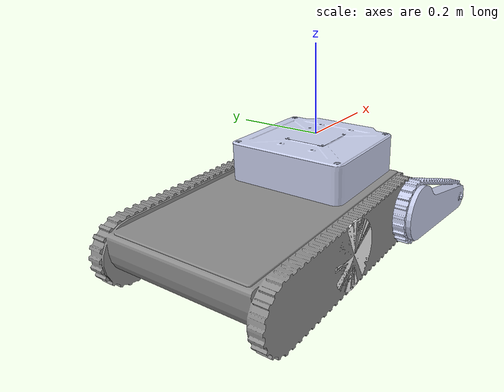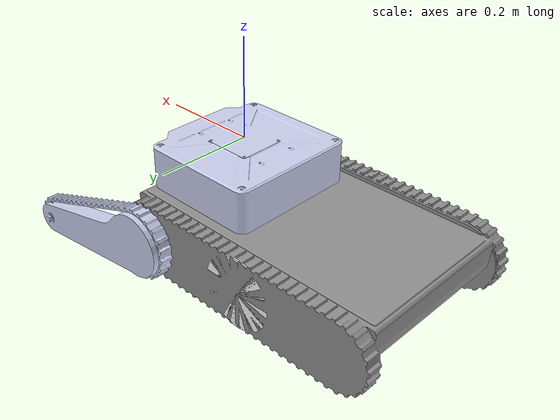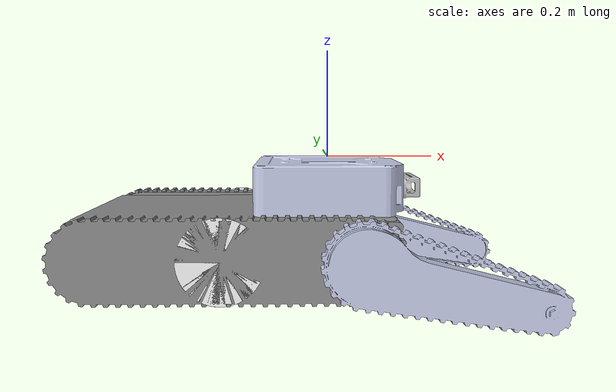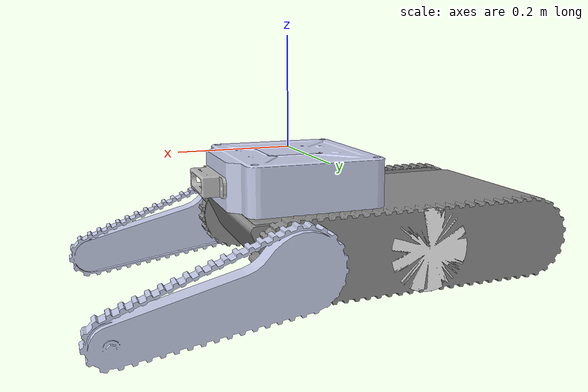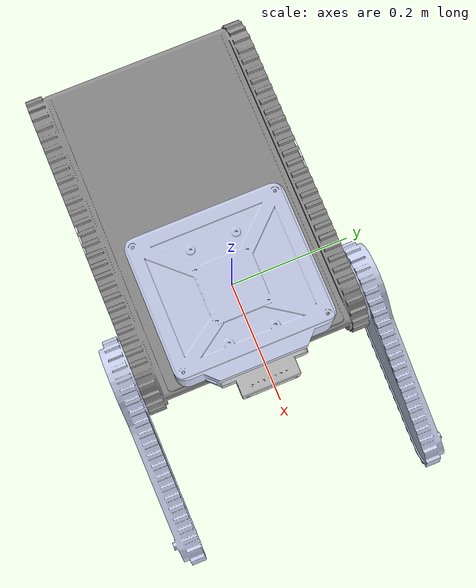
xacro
<?xml version="1.0"?>
<robot xmlns:xacro="http://www.ros.org/wiki/xacro" name="tracked_robot">

  <!-- Materials -->
  <material name="grey">
    <color rgba="0.56471 0.56471 0.56471 1"/>
  </material>

  <material name="white">
    <color rgba="1 1 1 0"/>
  </material>

  <material name="light_blue">
    <color rgba="0.79216 0.81961 0.93333 1"/>
  </material>

  <link name="lidar_link"/>

  <!-- Base Link -->
  <link name="base_link">
    <inertial>
      <origin xyz="-0.0023851 -2.6804E-12 0.049804" rpy="0 0 0"/>
      <mass value="24.218"/>
      <inertia ixx="0.38879" ixy="-2.3825E-10" ixz="-0.0015299" iyy="0.63474" iyz="-6.2968E-13" izz="0.97264"/>
    </inertial>

    <visual>
      <origin xyz="0 0 0" rpy="0 0 0"/>
      <geometry>
        <mesh filename="file://$(find t21_sim)/meshes/base_link.STL"/>
      </geometry>
      <material name="grey"/>
    </visual>

    <collision>
      <origin xyz="0 0 0" rpy="0 0 0"/>
      <geometry>
        <mesh filename="file://$(find t21_sim)/meshes/base_link.STL"/>
      </geometry>
    </collision>
  </link>

  <joint name="lidar_joint" type="fixed">
    <parent link="lidar_link"/><child link="base_link"/>
    <origin xyz="-0.1686 0.0 -0.199" rpy="0 0 0"/>
  </joint>

  <!-- Left Wheel -->
  <link name="wheel_left_link">
    <inertial>
      <origin xyz="0 -0.015 0" rpy="0 0 0"/>
      <mass value="0.50915"/>
      <inertia ixx="0.00072583" ixy="3.5474E-36" ixz="-1.9259E-34" iyy="0.0013753" iyz="-2.0195E-21" izz="0.00072583"/>
    </inertial>

    <visual>
      <origin xyz="0 0 0" rpy="0 0 0"/>
      <geometry>
        <mesh filename="file://$(find t21_sim)/meshes/left_wheel_link.STL" scale="1.0 0.1 1.0"/>
      </geometry>
      <material name="white"/>
    </visual>

    <collision>
      <origin xyz="0 0 0" rpy="0 0 0"/>
      <geometry>
        <mesh filename="file://$(find t21_sim)/meshes/left_wheel_link.STL" scale="1.0 0.1 1.0"/>
      </geometry>
    </collision>
  </link>

  <joint name="wheel_left_joint" type="continuous">
    <origin xyz="-0.015028 0.2025 0.04" rpy="0 0 0"/>
    <parent link="base_link"/>
    <child link="wheel_left_link"/>
    <axis xyz="0 1 0"/>
    <limit effort="10" velocity="10"/>
    <dynamics friction="0.1"/>
  </joint>

  <!-- Right Wheel -->
  <link name="wheel_right_link">
    <inertial>
      <origin xyz="0 0.015 0" rpy="0 0 0"/>
      <mass value="0.50915"/>
      <inertia ixx="0.00072583" ixy="-2.0887E-36" ixz="9.1015E-36" iyy="0.0013753" iyz="4.7568E-21" izz="0.00072583"/>
    </inertial>

    <visual>
      <origin xyz="0 0 0" rpy="0 0 0"/>
      <geometry>
        <mesh filename="file://$(find t21_sim)/meshes/right_wheel_link.STL" scale="1.0 0.1 1.0"/>
      </geometry>
      <material name="white"/>
    </visual>

    <collision>
      <origin xyz="0 0 0" rpy="0 0 0"/>
      <geometry>
        <mesh filename="file://$(find t21_sim)/meshes/right_wheel_link.STL" scale="1.0 0.1 1.0"/>
      </geometry>
    </collision>
  </link>

  <joint name="wheel_right_joint" type="continuous">
    <origin xyz="-0.015028 -0.2025 0.04" rpy="0 0 0"/>
    <parent link="base_link"/>
    <child link="wheel_right_link"/>
    <axis xyz="0 1 0"/>
    <limit effort="10" velocity="10"/>
    <dynamics friction="0.1"/>
  </joint>

  <!-- Flipper -->
  <link name="fliper_link">
    <inertial>
      <origin xyz="0.10581 -0.24294 -0.0083667" rpy="0 0 0"/>
      <mass value="2.7683"/>
      <inertia ixx="0.0029923" ixy="1.2514E-05" ixz="0.0017391" iyy="0.037286" iyz="-9.2678E-07" izz="0.03494"/>
    </inertial>

    <visual>
      <origin xyz="0 0 0" rpy="0 0 0"/>
      <geometry>
        <mesh filename="file://$(find t21_sim)/meshes/fliper_link.STL"/>
      </geometry>
      <material name="light_blue"/>
    </visual>

    <collision>
      <origin xyz="0 0 0" rpy="0 0 0"/>
      <geometry>
        <mesh filename="file://$(find t21_sim)/meshes/fliper_link.STL"/>
      </geometry>
    </collision>
  </link>

  <joint name="fliper_joint" type="revolute">
    <origin xyz="0.222 0.2435 0.04" rpy="0 3.25 0"/>
    <parent link="base_link"/>
    <child link="fliper_link"/>
    <axis xyz="0 -1 0"/>
    <limit lower="0.174533" upper="5.93412" effort="1000" velocity="1"/>
  </joint>

  <link name="big_box_link">
      <collision>
        <origin rpy="0 0 0" xyz="0 0 0"/>
        <geometry>
          <mesh filename="file://$(find t21_sim)/meshes/control_box.STL"/>
        </geometry>
      </collision>
      <visual>
        <origin rpy="0 0 0" xyz="0 0 0"/>
        <geometry>
          <mesh filename="file://$(find t21_sim)/meshes/control_box.STL"/>
        </geometry>
        <material name="light_blue"/>
      </visual>
  </link>

  <joint name="big_box_joint" type="fixed">
    <parent link="base_link"/><child link="big_box_link"/>
    <origin xyz="0.165 0.0 0.104" rpy="0 0 0"/>
  </joint>

  <link
    name="camera_base_link">
    <inertial>
      <origin
        xyz="0.00236723430443658 0.00284830369666845 1.86648075149107E-05"
        rpy="0 0 0" />
      <mass
        value="0.0798291622805554" />
      <inertia
        ixx="0.000122650398243472"
        ixy="-5.35688945763538E-07"
        ixz="4.40692500921343E-08"
        iyy="2.06507530748284E-05"
        iyz="-5.04471506920737E-08"
        izz="0.000119910604769246" />
    </inertial>
    <visual>
      <origin
        xyz="0 0 0"
        rpy="0 0 0" />
      <geometry>
        <mesh
          filename="file://$(find t21_sim)/meshes/camera_mount.STL" />
      </geometry>
      <material
        name="">
        <color
          rgba="0.749019607843137 0.749019607843137 0.749019607843137 1" />
      </material>
    </visual>
    <collision>
      <origin
        xyz="0 0 0"
        rpy="0 0 0" />
      <geometry>
        <mesh
          filename="file://$(find t21_sim)/meshes/camera_mount.STL" />
      </geometry>
    </collision>
  </link>
  <joint
    name="camera_base_joint"
    type="fixed">
    <origin
      xyz="0.148648549421411 -0.00168373549133136 0.0396301545012917"
      rpy="0 0 0" />
    <parent
      link="big_box_link" />
    <child
      link="camera_base_link" />
    <axis
      xyz="0 0 0" />
  </joint>

  <!-- Gazebo extensions -->
  <gazebo reference="base_link">
    <mu1>0.2</mu1>
    <mu2>0.2</mu2>
    <kp>1000000.0</kp>
    <kd>100.0</kd>
  </gazebo>

  <gazebo reference="left_wheel_link">
    <mu1>1.0</mu1>
    <mu2>1.0</mu2>
    <kp>1000000.0</kp>
    <kd>100.0</kd>
  </gazebo>

  <gazebo reference="right_wheel_link">
    <mu1>1.0</mu1>
    <mu2>1.0</mu2>
    <kp>1000000.0</kp>
    <kd>100.0</kd>
  </gazebo>

  <gazebo reference="fliper_link">
    <mu1>0.5</mu1>
    <mu2>0.5</mu2>
    <kp>1000000.0</kp>
    <kd>100.0</kd>
  </gazebo>

</robot>
